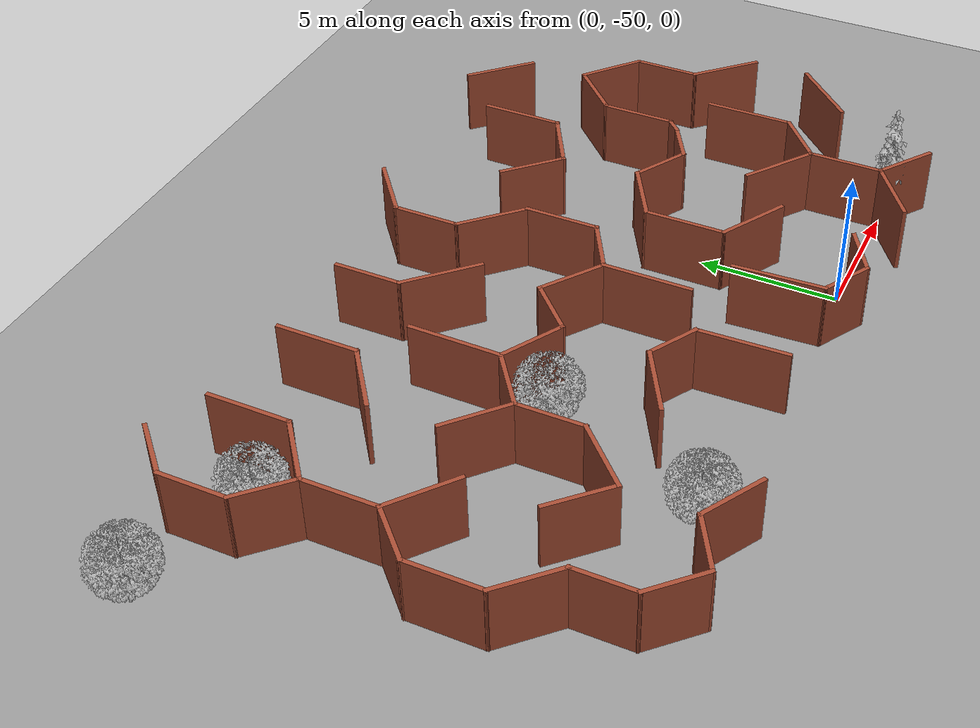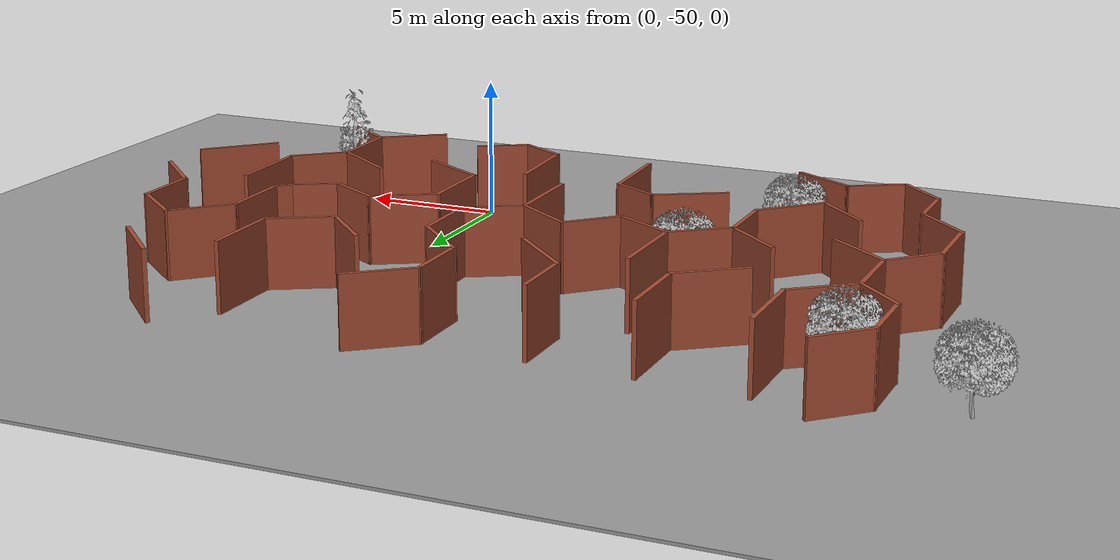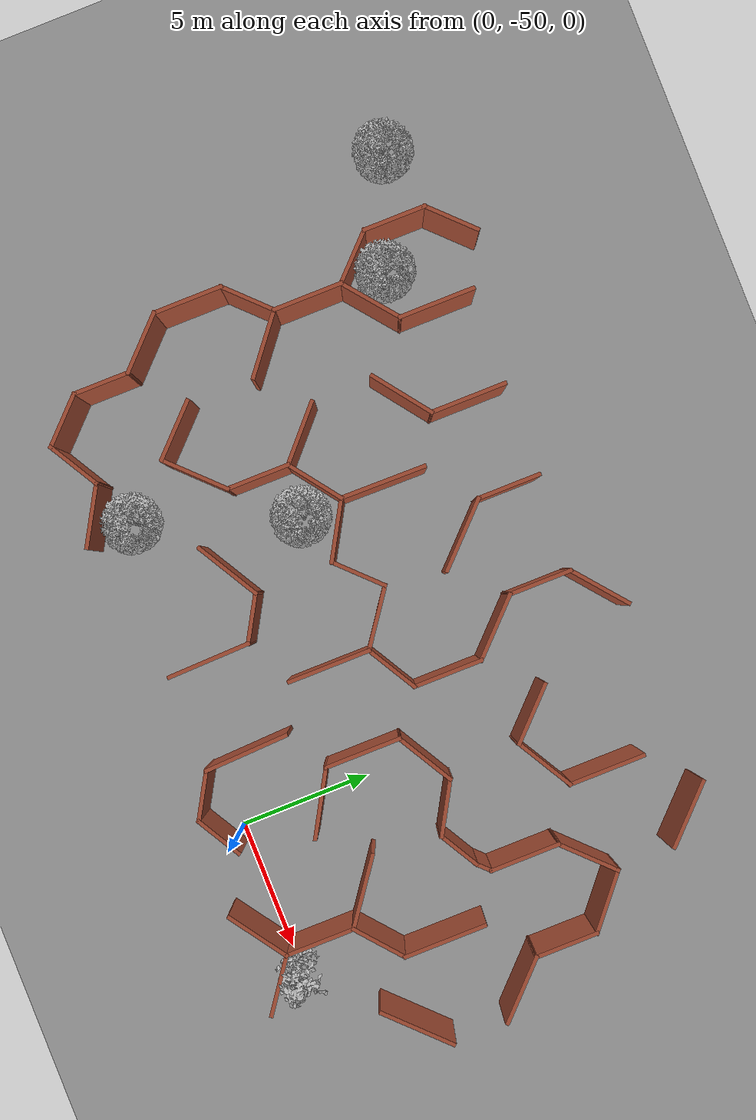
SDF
<sdf version="1.6">
 <world name="default">
  <model name="maze_rect_3">
   <pose>4e-06 -9.9e-05 0 0 -0 1.57001</pose>
   <link name="Wall_32">
    <collision name="Wall_32_Collision">
     <geometry><box><size>2.38551 0.15 2.5</size></box></geometry>
     <pose>0 0 1.25 0 -0 0</pose>
    </collision>
    <visual name="Wall_32_Visual">
     <pose>0 0 1.25 0 -0 0</pose>
     <geometry><box><size>2.38551 0.15 2.5</size></box></geometry>
     <material>
      <script><uri>file://media/materials/scripts/gazebo.material</uri><name>Gazebo/Bricks</name></script>
      <ambient>1 1 1 1</ambient>
     </material>
     <meta><layer>0</layer></meta>
    </visual>
    <pose>-50.5693 -5.5876 0 0 -0 0.950197</pose>
   </link>
   <link name="Wall_33">
    <collision name="Wall_33_Collision">
     <geometry><box><size>2.63445 0.15 2.5</size></box></geometry>
     <pose>0 0 1.25 0 -0 0</pose>
    </collision>
    <visual name="Wall_33_Visual">
     <pose>0 0 1.25 0 -0 0</pose>
     <geometry><box><size>2.63445 0.15 2.5</size></box></geometry>
     <material>
      <script><uri>file://media/materials/scripts/gazebo.material</uri><name>Gazebo/Bricks</name></script>
      <ambient>1 1 1 1</ambient>
     </material>
     <meta><layer>0</layer></meta>
    </visual>
    <pose>-50.6318 -3.6607 0 0 -0 2.18165</pose>
   </link>
   <link name="Wall_35">
    <collision name="Wall_35_Collision">
     <geometry><box><size>2 0.15 2.5</size></box></geometry>
     <pose>0 0 1.25 0 -0 0</pose>
    </collision>
    <visual name="Wall_35_Visual">
     <pose>0 0 1.25 0 -0 0</pose>
     <geometry><box><size>2 0.15 2.5</size></box></geometry>
     <material>
      <script><uri>file://media/materials/scripts/gazebo.material</uri><name>Gazebo/Bricks</name></script>
      <ambient>1 1 1 1</ambient>
     </material>
     <meta><layer>0</layer></meta>
    </visual>
    <pose>-50.6318 0.193118 0 0 -0 2.0944</pose>
   </link>
   <link name="Wall_36">
    <collision name="Wall_36_Collision">
     <geometry><box><size>2 0.15 2.5</size></box></geometry>
     <pose>0 0 1.25 0 -0 0</pose>
    </collision>
    <visual name="Wall_36_Visual">
     <pose>0 0 1.25 0 -0 0</pose>
     <geometry><box><size>2 0.15 2.5</size></box></geometry>
     <material>
      <script><uri>file://media/materials/scripts/gazebo.material</uri><name>Gazebo/Bricks</name></script>
      <ambient>1 1 1 1</ambient>
     </material>
     <meta><layer>0</layer></meta>
    </visual>
    <pose>-50.6318 1.79527 0 0 -0 1.0472</pose>
   </link>
   <link name="Wall_42">
    <collision name="Wall_42_Collision">
     <geometry><box><size>2.5 0.15 2.5</size></box></geometry>
     <pose>0 0 1.25 0 -0 0</pose>
    </collision>
    <visual name="Wall_42_Visual">
     <pose>0 0 1.25 0 -0 0</pose>
     <geometry><box><size>2.5 0.15 2.5</size></box></geometry>
     <material>
      <script><uri>file://media/materials/scripts/gazebo.material</uri><name>Gazebo/Bricks</name></script>
      <ambient>1 1 1 1</ambient>
     </material>
     <meta><layer>0</layer></meta>
    </visual>
    <pose>-50.6318 12.7072 0 0 -0 1.0472</pose>
   </link>
   <link name="Wall_43">
    <collision name="Wall_43_Collision">
     <geometry><box><size>2.25 0.15 2.5</size></box></geometry>
     <pose>0 0 1.25 0 -0 0</pose>
    </collision>
    <visual name="Wall_43_Visual">
     <pose>0 0 1.25 0 -0 0</pose>
     <geometry><box><size>2.25 0.15 2.5</size></box></geometry>
     <material>
      <script><uri>file://media/materials/scripts/gazebo.material</uri><name>Gazebo/Bricks</name></script>
      <ambient>1 1 1 1</ambient>
     </material>
     <meta><layer>0</layer></meta>
    </visual>
    <pose>-50.5693 14.6341 0 0 -0 2.0944</pose>
   </link>
   <link name="Wall_46">
    <collision name="Wall_46_Collision">
     <geometry><box><size>2.25 0.15 2.5</size></box></geometry>
     <pose>0 0 1.25 0 -0 0</pose>
    </collision>
    <visual name="Wall_46_Visual">
     <pose>0 0 1.25 0 -0 0</pose>
     <geometry><box><size>2.25 0.15 2.5</size></box></geometry>
     <material>
      <script><uri>file://media/materials/scripts/gazebo.material</uri><name>Gazebo/Bricks</name></script>
      <ambient>1 1 1 1</ambient>
     </material>
     <meta><layer>0</layer></meta>
    </visual>
    <pose>-50.3518 16.2859 0 0 -0 0.785398</pose>
   </link>
   <link name="Wall_47">
    <collision name="Wall_47_Collision">
     <geometry><box><size>2.25 0.15 2.5</size></box></geometry>
     <pose>0 0 1.25 0 -0 0</pose>
    </collision>
    <visual name="Wall_47_Visual">
     <pose>0 0 1.25 0 -0 0</pose>
     <geometry><box><size>2.25 0.15 2.5</size></box></geometry>
     <material>
      <script><uri>file://media/materials/scripts/gazebo.material</uri><name>Gazebo/Bricks</name></script>
      <ambient>1 1 1 1</ambient>
     </material>
     <meta><layer>0</layer></meta>
    </visual>
    <pose>-48.5594 17.0283 0 0 -0 0</pose>
   </link>
   <link name="Wall_48">
    <collision name="Wall_48_Collision">
     <geometry><box><size>2.5 0.15 2.5</size></box></geometry>
     <pose>0 0 1.25 0 -0 0</pose>
    </collision>
    <visual name="Wall_48_Visual">
     <pose>0 0 1.25 0 -0 0</pose>
     <geometry><box><size>2.5 0.15 2.5</size></box></geometry>
     <material>
      <script><uri>file://media/materials/scripts/gazebo.material</uri><name>Gazebo/Bricks</name></script>
      <ambient>1 1 1 1</ambient>
     </material>
     <meta><layer>0</layer></meta>
    </visual>
    <pose>-46.6785 17.8592 0 0 -0 0.785398</pose>
   </link>
   <link name="Wall_49">
    <collision name="Wall_49_Collision">
     <geometry><box><size>2.75 0.15 2.5</size></box></geometry>
     <pose>0 0 1.25 0 -0 0</pose>
    </collision>
    <visual name="Wall_49_Visual">
     <pose>0 0 1.25 0 -0 0</pose>
     <geometry><box><size>2.75 0.15 2.5</size></box></geometry>
     <material>
      <script><uri>file://media/materials/scripts/gazebo.material</uri><name>Gazebo/Bricks</name></script>
      <ambient>1 1 1 1</ambient>
     </material>
     <meta><layer>0</layer></meta>
    </visual>
    <pose>-44.5477 18.69 0 0 -0 0</pose>
   </link>
   <link name="Wall_50">
    <collision name="Wall_50_Collision">
     <geometry><box><size>2.25 0.15 2.5</size></box></geometry>
     <pose>0 0 1.25 0 -0 0</pose>
    </collision>
    <visual name="Wall_50_Visual">
     <pose>0 0 1.25 0 -0 0</pose>
     <geometry><box><size>2.25 0.15 2.5</size></box></geometry>
     <material>
      <script><uri>file://media/materials/scripts/gazebo.material</uri><name>Gazebo/Bricks</name></script>
      <ambient>1 1 1 1</ambient>
     </material>
     <meta><layer>0</layer></meta>
    </visual>
    <pose>-42.5052 17.9476 0 0 -0 -0.785398</pose>
   </link>
   <link name="Wall_51">
    <collision name="Wall_51_Collision">
     <geometry><box><size>2.75 0.15 2.5</size></box></geometry>
     <pose>0 0 1.25 0 -0 0</pose>
    </collision>
    <visual name="Wall_51_Visual">
     <pose>0 0 1.25 0 -0 0</pose>
     <geometry><box><size>2.75 0.15 2.5</size></box></geometry>
     <material>
      <script><uri>file://media/materials/scripts/gazebo.material</uri><name>Gazebo/Bricks</name></script>
      <ambient>1 1 1 1</ambient>
     </material>
     <meta><layer>0</layer></meta>
    </visual>
    <pose>-40.4627 17.2051 0 0 -0 0</pose>
   </link>
   <link name="Wall_52">
    <collision name="Wall_52_Collision">
     <geometry><box><size>2.25 0.15 2.5</size></box></geometry>
     <pose>0 0 1.25 0 -0 0</pose>
    </collision>
    <visual name="Wall_52_Visual">
     <pose>0 0 1.25 0 -0 0</pose>
     <geometry><box><size>2.25 0.15 2.5</size></box></geometry>
     <material>
      <script><uri>file://media/materials/scripts/gazebo.material</uri><name>Gazebo/Bricks</name></script>
      <ambient>1 1 1 1</ambient>
     </material>
     <meta><layer>0</layer></meta>
    </visual>
    <pose>-38.4203 17.9476 0 0 -0 0.785398</pose>
   </link>
   <link name="Wall_53">
    <collision name="Wall_53_Collision">
     <geometry><box><size>2.5 0.15 2.5</size></box></geometry>
     <pose>0 0 1.25 0 -0 0</pose>
    </collision>
    <visual name="Wall_53_Visual">
     <pose>0 0 1.25 0 -0 0</pose>
     <geometry><box><size>2.5 0.15 2.5</size></box></geometry>
     <material>
      <script><uri>file://media/materials/scripts/gazebo.material</uri><name>Gazebo/Bricks</name></script>
      <ambient>1 1 1 1</ambient>
     </material>
     <meta><layer>0</layer></meta>
    </visual>
    <pose>-36.5028 18.69 0 0 -0 0</pose>
   </link>
   <link name="Wall_537">
    <collision name="Wall_537_Collision">
     <geometry><box><size>2.5 0.15 2.5</size></box></geometry>
     <pose>0 0 1.25 0 -0 0</pose>
    </collision>
    <visual name="Wall_537_Visual">
     <pose>0 0 1.25 0 -0 0</pose>
     <geometry><box><size>2.5 0.15 2.5</size></box></geometry>
     <material>
      <script><uri>file://media/materials/scripts/gazebo.material</uri><name>Gazebo/Bricks</name></script>
      <ambient>1 1 1 1</ambient>
     </material>
     <meta><layer>0</layer></meta>
    </visual>
    <pose>-38.4579 0.179297 0 0 -0 -2.35619</pose>
   </link>
   <link name="Wall_538">
    <collision name="Wall_538_Collision">
     <geometry><box><size>2.5 0.15 2.5</size></box></geometry>
     <pose>0 0 1.25 0 -0 0</pose>
    </collision>
    <visual name="Wall_538_Visual">
     <pose>0 0 1.25 0 -0 0</pose>
     <geometry><box><size>2.5 0.15 2.5</size></box></geometry>
     <material>
      <script><uri>file://media/materials/scripts/gazebo.material</uri><name>Gazebo/Bricks</name></script>
      <ambient>1 1 1 1</ambient>
     </material>
     <meta><layer>0</layer></meta>
    </visual>
    <pose>-38.7013 -1.66913 0 0 -0 -1.0472</pose>
   </link>
   <link name="Wall_539">
    <collision name="Wall_539_Collision">
     <geometry><box><size>3 0.15 2.5</size></box></geometry>
     <pose>0 0 1.25 0 -0 0</pose>
    </collision>
    <visual name="Wall_539_Visual">
     <pose>0 0 1.25 0 -0 0</pose>
     <geometry><box><size>3 0.15 2.5</size></box></geometry>
     <material>
      <script><uri>file://media/materials/scripts/gazebo.material</uri><name>Gazebo/Bricks</name></script>
      <ambient>1 1 1 1</ambient>
     </material>
     <meta><layer>0</layer></meta>
    </visual>
    <pose>-36.6888 -2.68671 0 0 -0 0</pose>
   </link>
   <link name="Wall_54">
    <collision name="Wall_54_Collision">
     <geometry><box><size>2.25 0.15 2.5</size></box></geometry>
     <pose>0 0 1.25 0 -0 0</pose>
    </collision>
    <visual name="Wall_54_Visual">
     <pose>0 0 1.25 0 -0 0</pose>
     <geometry><box><size>2.25 0.15 2.5</size></box></geometry>
     <material>
      <script><uri>file://media/materials/scripts/gazebo.material</uri><name>Gazebo/Bricks</name></script>
      <ambient>1 1 1 1</ambient>
     </material>
     <meta><layer>0</layer></meta>
    </visual>
    <pose>-34.5853 17.9476 0 0 -0 -0.785398</pose>
   </link>
   <link name="Wall_541">
    <collision name="Wall_541_Collision">
     <geometry><box><size>2.75 0.15 2.5</size></box></geometry>
     <pose>0 0 1.25 0 -0 0</pose>
    </collision>
    <visual name="Wall_541_Visual">
     <pose>0 0 1.25 0 -0 0</pose>
     <geometry><box><size>2.75 0.15 2.5</size></box></geometry>
     <material>
      <script><uri>file://media/materials/scripts/gazebo.material</uri><name>Gazebo/Bricks</name></script>
      <ambient>1 1 1 1</ambient>
     </material>
     <meta><layer>0</layer></meta>
    </visual>
    <pose>-34.5213 -5.26765 0 0 -0 -2.35619</pose>
   </link>
   <link name="Wall_559">
    <collision name="Wall_559_Collision">
     <geometry><box><size>3 0.15 2.5</size></box></geometry>
     <pose>0 0 1.25 0 -0 0</pose>
    </collision>
    <visual name="Wall_559_Visual">
     <pose>0 0 1.25 0 -0 0</pose>
     <geometry><box><size>3 0.15 2.5</size></box></geometry>
     <material>
      <script><uri>file://media/materials/scripts/gazebo.material</uri><name>Gazebo/Bricks</name></script>
      <ambient>1 1 1 1</ambient>
     </material>
     <meta><layer>0</layer></meta>
    </visual>
    <pose>-46.485 -8.87773 0 0 -0 -0.785398</pose>
   </link>
   <link name="Wall_561">
    <collision name="Wall_561_Collision">
     <geometry><box><size>2.75 0.15 2.5</size></box></geometry>
     <pose>0 0 1.25 0 -0 0</pose>
    </collision>
    <visual name="Wall_561_Visual">
     <pose>0 0 1.25 0 -0 0</pose>
     <geometry><box><size>2.75 0.15 2.5</size></box></geometry>
     <material>
      <script><uri>file://media/materials/scripts/gazebo.material</uri><name>Gazebo/Bricks</name></script>
      <ambient>1 1 1 1</ambient>
     </material>
     <meta><layer>0</layer></meta>
    </visual>
    <pose>-42.4581 -8.96612 0 0 -0 0.785398</pose>
   </link>
   <link name="Wall_562">
    <collision name="Wall_562_Collision">
     <geometry><box><size>2.5 0.15 2.5</size></box></geometry>
     <pose>0 0 1.25 0 -0 0</pose>
    </collision>
    <visual name="Wall_562_Visual">
     <pose>0 0 1.25 0 -0 0</pose>
     <geometry><box><size>2.5 0.15 2.5</size></box></geometry>
     <material>
      <script><uri>file://media/materials/scripts/gazebo.material</uri><name>Gazebo/Bricks</name></script>
      <ambient>1 1 1 1</ambient>
     </material>
     <meta><layer>0</layer></meta>
    </visual>
    <pose>-40.3639 -8.04688 0 0 -0 0</pose>
   </link>
   <link name="Wall_568">
    <collision name="Wall_568_Collision">
     <geometry><box><size>2.75 0.15 2.5</size></box></geometry>
     <pose>0 0 1.25 0 -0 0</pose>
    </collision>
    <visual name="Wall_568_Visual">
     <pose>0 0 1.25 0 -0 0</pose>
     <geometry><box><size>2.75 0.15 2.5</size></box></geometry>
     <material>
      <script><uri>file://media/materials/scripts/gazebo.material</uri><name>Gazebo/Bricks</name></script>
      <ambient>1 1 1 1</ambient>
     </material>
     <meta><layer>0</layer></meta>
    </visual>
    <pose>-46.752 -0.005721 0 0 -0 1.0472</pose>
   </link>
   <link name="Wall_569">
    <collision name="Wall_569_Collision">
     <geometry><box><size>3 0.15 2.5</size></box></geometry>
     <pose>0 0 1.25 0 -0 0</pose>
    </collision>
    <visual name="Wall_569_Visual">
     <pose>0 0 1.25 0 -0 0</pose>
     <geometry><box><size>3 0.15 2.5</size></box></geometry>
     <material>
      <script><uri>file://media/materials/scripts/gazebo.material</uri><name>Gazebo/Bricks</name></script>
      <ambient>1 1 1 1</ambient>
     </material>
     <meta><layer>0</layer></meta>
    </visual>
    <pose>-44.677 1.12011 0 0 -0 0</pose>
   </link>
   <link name="Wall_570">
    <collision name="Wall_570_Collision">
     <geometry><box><size>2.5 0.15 2.5</size></box></geometry>
     <pose>0 0 1.25 0 -0 0</pose>
    </collision>
    <visual name="Wall_570_Visual">
     <pose>0 0 1.25 0 -0 0</pose>
     <geometry><box><size>2.5 0.15 2.5</size></box></geometry>
     <material>
      <script><uri>file://media/materials/scripts/gazebo.material</uri><name>Gazebo/Bricks</name></script>
      <ambient>1 1 1 1</ambient>
     </material>
     <meta><layer>0</layer></meta>
    </visual>
    <pose>-42.6645 0.102532 0 0 -0 -1.0472</pose>
   </link>
   <link name="Wall_571">
    <collision name="Wall_571_Collision">
     <geometry><box><size>2.25 0.15 2.5</size></box></geometry>
     <pose>0 0 1.25 0 -0 0</pose>
    </collision>
    <visual name="Wall_571_Visual">
     <pose>0 0 1.25 0 -0 0</pose>
     <geometry><box><size>2.25 0.15 2.5</size></box></geometry>
     <material>
      <script><uri>file://media/materials/scripts/gazebo.material</uri><name>Gazebo/Bricks</name></script>
      <ambient>1 1 1 1</ambient>
     </material>
     <meta><layer>0</layer></meta>
    </visual>
    <pose>-42.602 -1.82437 0 0 -0 -2.0944</pose>
   </link>
   <link name="Wall_572">
    <collision name="Wall_572_Collision">
     <geometry><box><size>1.75 0.15 2.5</size></box></geometry>
     <pose>0 0 1.25 0 -0 0</pose>
    </collision>
    <visual name="Wall_572_Visual">
     <pose>0 0 1.25 0 -0 0</pose>
     <geometry><box><size>1.75 0.15 2.5</size></box></geometry>
     <material>
      <script><uri>file://media/materials/scripts/gazebo.material</uri><name>Gazebo/Bricks</name></script>
      <ambient>1 1 1 1</ambient>
     </material>
     <meta><layer>0</layer></meta>
    </visual>
    <pose>-42.727 -3.42652 0 0 -0 -1.0472</pose>
   </link>
   <link name="Wall_573">
    <collision name="Wall_573_Collision">
     <geometry><box><size>0.75 0.15 2.5</size></box></geometry>
     <pose>0 0 1.25 0 -0 0</pose>
    </collision>
    <visual name="Wall_573_Visual">
     <pose>0 0 1.25 0 -0 0</pose>
     <geometry><box><size>0.75 0.15 2.5</size></box></geometry>
     <material>
      <script><uri>file://media/materials/scripts/gazebo.material</uri><name>Gazebo/Bricks</name></script>
      <ambient>1 1 1 1</ambient>
     </material>
     <meta><layer>0</layer></meta>
    </visual>
    <pose>-42.1148 -4.33147 0 0 -0 -0.785398</pose>
   </link>
   <link name="Wall_574">
    <collision name="Wall_574_Collision">
     <geometry><box><size>2.75 0.15 2.5</size></box></geometry>
     <pose>0 0 1.25 0 -0 0</pose>
    </collision>
    <visual name="Wall_574_Visual">
     <pose>0 0 1.25 0 -0 0</pose>
     <geometry><box><size>2.75 0.15 2.5</size></box></geometry>
     <material>
      <script><uri>file://media/materials/scripts/gazebo.material</uri><name>Gazebo/Bricks</name></script>
      <ambient>1 1 1 1</ambient>
     </material>
     <meta><layer>0</layer></meta>
    </visual>
    <pose>-40.6027 -4.54361 0 0 -0 0</pose>
   </link>
   <link name="Wall_575">
    <collision name="Wall_575_Collision">
     <geometry><box><size>2.5 0.15 2.5</size></box></geometry>
     <pose>0 0 1.25 0 -0 0</pose>
    </collision>
    <visual name="Wall_575_Visual">
     <pose>0 0 1.25 0 -0 0</pose>
     <geometry><box><size>2.5 0.15 2.5</size></box></geometry>
     <material>
      <script><uri>file://media/materials/scripts/gazebo.material</uri><name>Gazebo/Bricks</name></script>
      <ambient>1 1 1 1</ambient>
     </material>
     <meta><layer>0</layer></meta>
    </visual>
    <pose>-38.4718 -5.37446 0 0 -0 -0.785398</pose>
   </link>
   <link name="Wall_576">
    <collision name="Wall_576_Collision">
     <geometry><box><size>2.55568 0.15 2.5</size></box></geometry>
     <pose>0 0 1.25 0 -0 0</pose>
    </collision>
    <visual name="Wall_576_Visual">
     <pose>0 0 1.25 0 -0 0</pose>
     <geometry><box><size>2.55568 0.15 2.5</size></box></geometry>
     <material>
      <script><uri>file://media/materials/scripts/gazebo.material</uri><name>Gazebo/Bricks</name></script>
      <ambient>1 1 1 1</ambient>
     </material>
     <meta><layer>0</layer></meta>
    </visual>
    <pose>-38.4149 -7.12609 0 0 -0 -2.26975</pose>
   </link>
   <link name="Wall_578">
    <collision name="Wall_578_Collision">
     <geometry><box><size>3.25 0.15 2.5</size></box></geometry>
     <pose>0 0 1.25 0 -0 0</pose>
    </collision>
    <visual name="Wall_578_Visual">
     <pose>0 0 1.25 0 -0 0</pose>
     <geometry><box><size>3.25 0.15 2.5</size></box></geometry>
     <material>
      <script><uri>file://media/materials/scripts/gazebo.material</uri><name>Gazebo/Bricks</name></script>
      <ambient>1 1 1 1</ambient>
     </material>
     <meta><layer>0</layer></meta>
    </visual>
    <pose>-44.4008 -6.3002 0 0 -0 3.14159</pose>
   </link>
   <link name="Wall_579">
    <collision name="Wall_579_Collision">
     <geometry><box><size>2.27211 0.15 2.5</size></box></geometry>
     <pose>0 0 1.25 0 -0 0</pose>
    </collision>
    <visual name="Wall_579_Visual">
     <pose>0 0 1.25 0 -0 0</pose>
     <geometry><box><size>2.27211 0.15 2.5</size></box></geometry>
     <material>
      <script><uri>file://media/materials/scripts/gazebo.material</uri><name>Gazebo/Bricks</name></script>
      <ambient>1 1 1 1</ambient>
     </material>
     <meta><layer>0</layer></meta>
    </visual>
    <pose>-46.635 -5.48924 0 0 -0 2.27164</pose>
   </link>
   <link name="Wall_580">
    <collision name="Wall_580_Collision">
     <geometry><box><size>2.75 0.15 2.5</size></box></geometry>
     <pose>0 0 1.25 0 -0 0</pose>
    </collision>
    <visual name="Wall_580_Visual">
     <pose>0 0 1.25 0 -0 0</pose>
     <geometry><box><size>2.75 0.15 2.5</size></box></geometry>
     <material>
      <script><uri>file://media/materials/scripts/gazebo.material</uri><name>Gazebo/Bricks</name></script>
      <ambient>1 1 1 1</ambient>
     </material>
     <meta><layer>0</layer></meta>
    </visual>
    <pose>-48.6193 -4.67828 0 0 -0 3.14159</pose>
   </link>
   <link name="Wall_582">
    <collision name="Wall_582_Collision">
     <geometry><box><size>2.91824 0.15 2.5</size></box></geometry>
     <pose>0 0 1.25 0 -0 0</pose>
    </collision>
    <visual name="Wall_582_Visual">
     <pose>0 0 1.25 0 -0 0</pose>
     <geometry><box><size>2.91824 0.15 2.5</size></box></geometry>
     <material>
      <script><uri>file://media/materials/scripts/gazebo.material</uri><name>Gazebo/Bricks</name></script>
      <ambient>1 1 1 1</ambient>
     </material>
     <meta><layer>0</layer></meta>
    </visual>
    <pose>-46.5071 -3.55749 0 0 -0 -2.19787</pose>
   </link>
   <link name="Wall_595">
    <collision name="Wall_595_Collision">
     <geometry><box><size>3.29802 0.15 2.5</size></box></geometry>
     <pose>0 0 1.25 0 -0 0</pose>
    </collision>
    <visual name="Wall_595_Visual">
     <pose>0 0 1.25 0 -0 0</pose>
     <geometry><box><size>3.29802 0.15 2.5</size></box></geometry>
     <material>
      <script><uri>file://media/materials/scripts/gazebo.material</uri><name>Gazebo/Bricks</name></script>
      <ambient>1 1 1 1</ambient>
     </material>
     <meta><layer>0</layer></meta>
    </visual>
    <pose>-48.5968 2.66538 0 0 -0 -3.09771</pose>
   </link>
   <link name="Wall_597">
    <collision name="Wall_597_Collision">
     <geometry><box><size>2.75 0.15 2.5</size></box></geometry>
     <pose>0 0 1.25 0 -0 0</pose>
    </collision>
    <visual name="Wall_597_Visual">
     <pose>0 0 1.25 0 -0 0</pose>
     <geometry><box><size>2.75 0.15 2.5</size></box></geometry>
     <material>
      <script><uri>file://media/materials/scripts/gazebo.material</uri><name>Gazebo/Bricks</name></script>
      <ambient>1 1 1 1</ambient>
     </material>
     <meta><layer>0</layer></meta>
    </visual>
    <pose>-46.7977 9.04905 0 0 -0 -1.0472</pose>
   </link>
   <link name="Wall_598">
    <collision name="Wall_598_Collision">
     <geometry><box><size>2 0.15 2.5</size></box></geometry>
     <pose>0 0 1.25 0 -0 0</pose>
    </collision>
    <visual name="Wall_598_Visual">
     <pose>0 0 1.25 0 -0 0</pose>
     <geometry><box><size>2 0.15 2.5</size></box></geometry>
     <material>
      <script><uri>file://media/materials/scripts/gazebo.material</uri><name>Gazebo/Bricks</name></script>
      <ambient>1 1 1 1</ambient>
     </material>
     <meta><layer>0</layer></meta>
    </visual>
    <pose>-46.6102 7.12214 0 0 -0 -2.0944</pose>
   </link>
   <link name="Wall_599">
    <collision name="Wall_599_Collision">
     <geometry><box><size>3.24778 0.15 2.5</size></box></geometry>
     <pose>0 0 1.25 0 -0 0</pose>
    </collision>
    <visual name="Wall_599_Visual">
     <pose>0 0 1.25 0 -0 0</pose>
     <geometry><box><size>3.24778 0.15 2.5</size></box></geometry>
     <material>
      <script><uri>file://media/materials/scripts/gazebo.material</uri><name>Gazebo/Bricks</name></script>
      <ambient>1 1 1 1</ambient>
     </material>
     <meta><layer>0</layer></meta>
    </visual>
    <pose>-48.621 6.27736 0 0 -0 -3.11337</pose>
   </link>
   <link name="Wall_601">
    <collision name="Wall_601_Collision">
     <geometry><box><size>2.71977 0.15 2.5</size></box></geometry>
     <pose>0 0 1.25 0 -0 0</pose>
    </collision>
    <visual name="Wall_601_Visual">
     <pose>0 0 1.25 0 -0 0</pose>
     <geometry><box><size>2.71977 0.15 2.5</size></box></geometry>
     <material>
      <script><uri>file://media/materials/scripts/gazebo.material</uri><name>Gazebo/Bricks</name></script>
      <ambient>1 1 1 1</ambient>
     </material>
     <meta><layer>0</layer></meta>
    </visual>
    <pose>-42.5636 16.2004 0 0 -0 0.897796</pose>
   </link>
   <link name="Wall_603">
    <collision name="Wall_603_Collision">
     <geometry><box><size>3 0.15 2.5</size></box></geometry>
     <pose>0 0 1.25 0 -0 0</pose>
    </collision>
    <visual name="Wall_603_Visual">
     <pose>0 0 1.25 0 -0 0</pose>
     <geometry><box><size>3 0.15 2.5</size></box></geometry>
     <material>
      <script><uri>file://media/materials/scripts/gazebo.material</uri><name>Gazebo/Bricks</name></script>
      <ambient>1 1 1 1</ambient>
     </material>
     <meta><layer>0</layer></meta>
    </visual>
    <pose>-36.1998 15.2864 0 0 -0 3.14159</pose>
   </link>
   <link name="Wall_604">
    <collision name="Wall_604_Collision">
     <geometry><box><size>2.60902 0.15 2.5</size></box></geometry>
     <pose>0 0 1.25 0 -0 0</pose>
    </collision>
    <visual name="Wall_604_Visual">
     <pose>0 0 1.25 0 -0 0</pose>
     <geometry><box><size>2.60902 0.15 2.5</size></box></geometry>
     <material>
      <script><uri>file://media/materials/scripts/gazebo.material</uri><name>Gazebo/Bricks</name></script>
      <ambient>1 1 1 1</ambient>
     </material>
     <meta><layer>0</layer></meta>
    </visual>
    <pose>-38.3937 16.2458 0 0 -0 2.24649</pose>
   </link>
   <link name="Wall_606">
    <collision name="Wall_606_Collision">
     <geometry><box><size>2.67136 0.15 2.5</size></box></geometry>
     <pose>0 0 1.25 0 -0 0</pose>
    </collision>
    <visual name="Wall_606_Visual">
     <pose>0 0 1.25 0 -0 0</pose>
     <geometry><box><size>2.67136 0.15 2.5</size></box></geometry>
     <material>
      <script><uri>file://media/materials/scripts/gazebo.material</uri><name>Gazebo/Bricks</name></script>
      <ambient>1 1 1 1</ambient>
     </material>
     <meta><layer>0</layer></meta>
    </visual>
    <pose>-38.5842 12.6758 0 0 -0 -0.926085</pose>
   </link>
   <link name="Wall_607">
    <collision name="Wall_607_Collision">
     <geometry><box><size>3 0.15 2.5</size></box></geometry>
     <pose>0 0 1.25 0 -0 0</pose>
    </collision>
    <visual name="Wall_607_Visual">
     <pose>0 0 1.25 0 -0 0</pose>
     <geometry><box><size>3 0.15 2.5</size></box></geometry>
     <material>
      <script><uri>file://media/materials/scripts/gazebo.material</uri><name>Gazebo/Bricks</name></script>
      <ambient>1 1 1 1</ambient>
     </material>
     <meta><layer>0</layer></meta>
    </visual>
    <pose>-36.4016 11.6681 0 0 -0 0</pose>
   </link>
   <link name="Wall_615">
    <collision name="Wall_615_Collision">
     <geometry><box><size>3 0.15 2.5</size></box></geometry>
     <pose>0 0 1.25 0 -0 0</pose>
    </collision>
    <visual name="Wall_615_Visual">
     <pose>0 0 1.25 0 -0 0</pose>
     <geometry><box><size>3 0.15 2.5</size></box></geometry>
     <material>
      <script><uri>file://media/materials/scripts/gazebo.material</uri><name>Gazebo/Bricks</name></script>
      <ambient>1 1 1 1</ambient>
     </material>
     <meta><layer>0</layer></meta>
    </visual>
    <pose>-38.3984 7.14209 0 0 -0 0.785398</pose>
   </link>
   <link name="Wall_616">
    <collision name="Wall_616_Collision">
     <geometry><box><size>2.5 0.15 2.5</size></box></geometry>
     <pose>0 0 1.25 0 -0 0</pose>
    </collision>
    <visual name="Wall_616_Visual">
     <pose>0 0 1.25 0 -0 0</pose>
     <geometry><box><size>2.5 0.15 2.5</size></box></geometry>
     <material>
      <script><uri>file://media/materials/scripts/gazebo.material</uri><name>Gazebo/Bricks</name></script>
      <ambient>1 1 1 1</ambient>
     </material>
     <meta><layer>0</layer></meta>
    </visual>
    <pose>-36.2158 8.14972 0 0 -0 0</pose>
   </link>
   <link name="Wall_639">
    <collision name="Wall_639_Collision">
     <geometry><box><size>3.25 0.15 2.5</size></box></geometry>
     <pose>0 0 1.25 0 -0 0</pose>
    </collision>
    <visual name="Wall_639_Visual">
     <pose>0 0 1.25 0 -0 0</pose>
     <geometry><box><size>3.25 0.15 2.5</size></box></geometry>
     <material>
      <script><uri>file://media/materials/scripts/gazebo.material</uri><name>Gazebo/Bricks</name></script>
      <ambient>1 1 1 1</ambient>
     </material>
     <meta><layer>0</layer></meta>
    </visual>
    <pose>-44.6499 4.48459 0 0 -0 0</pose>
   </link>
   <link name="Wall_640">
    <collision name="Wall_640_Collision">
     <geometry><box><size>2.25 0.15 2.5</size></box></geometry>
     <pose>0 0 1.25 0 -0 0</pose>
    </collision>
    <visual name="Wall_640_Visual">
     <pose>0 0 1.25 0 -0 0</pose>
     <geometry><box><size>2.25 0.15 2.5</size></box></geometry>
     <material>
      <script><uri>file://media/materials/scripts/gazebo.material</uri><name>Gazebo/Bricks</name></script>
      <ambient>1 1 1 1</ambient>
     </material>
     <meta><layer>0</layer></meta>
    </visual>
    <pose>-42.5749 3.57526 0 0 -0 -1.0472</pose>
   </link>
   <link name="Wall_641">
    <collision name="Wall_641_Collision">
     <geometry><box><size>2.75 0.15 2.5</size></box></geometry>
     <pose>0 0 1.25 0 -0 0</pose>
    </collision>
    <visual name="Wall_641_Visual">
     <pose>0 0 1.25 0 -0 0</pose>
     <geometry><box><size>2.75 0.15 2.5</size></box></geometry>
     <material>
      <script><uri>file://media/materials/scripts/gazebo.material</uri><name>Gazebo/Bricks</name></script>
      <ambient>1 1 1 1</ambient>
     </material>
     <meta><layer>0</layer></meta>
    </visual>
    <pose>-40.7499 2.66594 0 0 -0 0</pose>
   </link>
   <link name="Wall_642">
    <collision name="Wall_642_Collision">
     <geometry><box><size>2.75 0.15 2.5</size></box></geometry>
     <pose>0 0 1.25 0 -0 0</pose>
    </collision>
    <visual name="Wall_642_Visual">
     <pose>0 0 1.25 0 -0 0</pose>
     <geometry><box><size>2.75 0.15 2.5</size></box></geometry>
     <material>
      <script><uri>file://media/materials/scripts/gazebo.material</uri><name>Gazebo/Bricks</name></script>
      <ambient>1 1 1 1</ambient>
     </material>
     <meta><layer>0</layer></meta>
    </visual>
    <pose>-38.5307 3.58517 0 0 -0 0.785398</pose>
   </link>
   <link name="Wall_643">
    <collision name="Wall_643_Collision">
     <geometry><box><size>2.5 0.15 2.5</size></box></geometry>
     <pose>0 0 1.25 0 -0 0</pose>
    </collision>
    <visual name="Wall_643_Visual">
     <pose>0 0 1.25 0 -0 0</pose>
     <geometry><box><size>2.5 0.15 2.5</size></box></geometry>
     <material>
      <script><uri>file://media/materials/scripts/gazebo.material</uri><name>Gazebo/Bricks</name></script>
      <ambient>1 1 1 1</ambient>
     </material>
     <meta><layer>0</layer></meta>
    </visual>
    <pose>-36.4364 4.50441 0 0 -0 0</pose>
   </link>
   <link name="Wall_644">
    <collision name="Wall_644_Collision">
     <geometry><box><size>2.57675 0.15 2.5</size></box></geometry>
     <pose>0 0 1.25 0 -0 0</pose>
    </collision>
    <visual name="Wall_644_Visual">
     <pose>0 0 1.25 0 -0 0</pose>
     <geometry><box><size>2.57675 0.15 2.5</size></box></geometry>
     <material>
      <script><uri>file://media/materials/scripts/gazebo.material</uri><name>Gazebo/Bricks</name></script>
      <ambient>1 1 1 1</ambient>
     </material>
     <meta><layer>0</layer></meta>
    </visual>
    <pose>-34.4931 3.56531 0 0 -0 -0.885071</pose>
   </link>
   <link name="Wall_653">
    <collision name="Wall_653_Collision">
     <geometry><box><size>2.5 0.15 2.5</size></box></geometry>
     <pose>0 0 1.25 0 -0 0</pose>
    </collision>
    <visual name="Wall_653_Visual">
     <pose>0 0 1.25 0 -0 0</pose>
     <geometry><box><size>2.5 0.15 2.5</size></box></geometry>
     <material>
      <script><uri>file://media/materials/scripts/gazebo.material</uri><name>Gazebo/Bricks</name></script>
      <ambient>1 1 1 1</ambient>
     </material>
     <meta><layer>0</layer></meta>
    </visual>
    <pose>-46.7121 14.4734 0 0 -0 -2.35619</pose>
   </link>
   <link name="Wall_654">
    <collision name="Wall_654_Collision">
     <geometry><box><size>2.75 0.15 2.5</size></box></geometry>
     <pose>0 0 1.25 0 -0 0</pose>
    </collision>
    <visual name="Wall_654_Visual">
     <pose>0 0 1.25 0 -0 0</pose>
     <geometry><box><size>2.75 0.15 2.5</size></box></geometry>
     <material>
      <script><uri>file://media/materials/scripts/gazebo.material</uri><name>Gazebo/Bricks</name></script>
      <ambient>1 1 1 1</ambient>
     </material>
     <meta><layer>0</layer></meta>
    </visual>
    <pose>-46.6237 12.7233 0 0 -0 -0.785398</pose>
   </link>
   <link name="Wall_655">
    <collision name="Wall_655_Collision">
     <geometry><box><size>2.5 0.15 2.5</size></box></geometry>
     <pose>0 0 1.25 0 -0 0</pose>
    </collision>
    <visual name="Wall_655_Visual">
     <pose>0 0 1.25 0 -0 0</pose>
     <geometry><box><size>2.5 0.15 2.5</size></box></geometry>
     <material>
      <script><uri>file://media/materials/scripts/gazebo.material</uri><name>Gazebo/Bricks</name></script>
      <ambient>1 1 1 1</ambient>
     </material>
     <meta><layer>0</layer></meta>
    </visual>
    <pose>-44.5295 11.804 0 0 -0 0</pose>
   </link>
   <link name="Wall_656">
    <collision name="Wall_656_Collision">
     <geometry><box><size>2.41594 0.15 2.5</size></box></geometry>
     <pose>0 0 1.25 0 -0 0</pose>
    </collision>
    <visual name="Wall_656_Visual">
     <pose>0 0 1.25 0 -0 0</pose>
     <geometry><box><size>2.41594 0.15 2.5</size></box></geometry>
     <material>
      <script><uri>file://media/materials/scripts/gazebo.material</uri><name>Gazebo/Bricks</name></script>
      <ambient>1 1 1 1</ambient>
     </material>
     <meta><layer>0</layer></meta>
    </visual>
    <pose>-42.6786 10.8948 0 0 -0 -0.931586</pose>
   </link>
   <link name="Wall_657">
    <collision name="Wall_657_Collision">
     <geometry><box><size>2.5 0.15 2.5</size></box></geometry>
     <pose>0 0 1.25 0 -0 0</pose>
    </collision>
    <visual name="Wall_657_Visual">
     <pose>0 0 1.25 0 -0 0</pose>
     <geometry><box><size>2.5 0.15 2.5</size></box></geometry>
     <material>
      <script><uri>file://media/materials/scripts/gazebo.material</uri><name>Gazebo/Bricks</name></script>
      <ambient>1 1 1 1</ambient>
     </material>
     <meta><layer>0</layer></meta>
    </visual>
    <pose>-42.5902 8.96789 0 0 -0 -2.0944</pose>
   </link>
   <link name="Wall_658">
    <collision name="Wall_658_Collision">
     <geometry><box><size>2.25 0.15 2.5</size></box></geometry>
     <pose>0 0 1.25 0 -0 0</pose>
    </collision>
    <visual name="Wall_658_Visual">
     <pose>0 0 1.25 0 -0 0</pose>
     <geometry><box><size>2.25 0.15 2.5</size></box></geometry>
     <material>
      <script><uri>file://media/materials/scripts/gazebo.material</uri><name>Gazebo/Bricks</name></script>
      <ambient>1 1 1 1</ambient>
     </material>
     <meta><layer>0</layer></meta>
    </visual>
    <pose>-42.4353 7.20785 0 0 -0 -0.785398</pose>
   </link>
   <link name="Wall_659">
    <collision name="Wall_659_Collision">
     <geometry><box><size>2.57972 0.15 2.5</size></box></geometry>
     <pose>0 0 1.25 0 -0 0</pose>
    </collision>
    <visual name="Wall_659_Visual">
     <pose>0 0 1.25 0 -0 0</pose>
     <geometry><box><size>2.57972 0.15 2.5</size></box></geometry>
     <material>
      <script><uri>file://media/materials/scripts/gazebo.material</uri><name>Gazebo/Bricks</name></script>
      <ambient>1 1 1 1</ambient>
     </material>
     <meta><layer>0</layer></meta>
    </visual>
    <pose>-42.3964 5.47499 0 0 -0 -2.18845</pose>
   </link>
   <link name="Wall_661">
    <collision name="Wall_661_Collision">
     <geometry><box><size>3.36585 0.15 2.5</size></box></geometry>
     <pose>0 0 1.25 0 -0 0</pose>
    </collision>
    <visual name="Wall_661_Visual">
     <pose>0 0 1.25 0 -0 0</pose>
     <geometry><box><size>3.36585 0.15 2.5</size></box></geometry>
     <material>
      <script><uri>file://media/materials/scripts/gazebo.material</uri><name>Gazebo/Bricks</name></script>
      <ambient>1 1 1 1</ambient>
     </material>
     <meta><layer>0</layer></meta>
    </visual>
    <pose>-40.3949 9.96727 0 0 -0 3.13027</pose>
   </link>
   <link name="Wall_663">
    <collision name="Wall_663_Collision">
     <geometry><box><size>2.59346 0.15 2.5</size></box></geometry>
     <pose>0 0 1.25 0 -0 0</pose>
    </collision>
    <visual name="Wall_663_Visual">
     <pose>0 0 1.25 0 -0 0</pose>
     <geometry><box><size>2.59346 0.15 2.5</size></box></geometry>
     <material>
      <script><uri>file://media/materials/scripts/gazebo.material</uri><name>Gazebo/Bricks</name></script>
      <ambient>1 1 1 1</ambient>
     </material>
     <meta><layer>0</layer></meta>
    </visual>
    <pose>-42.5351 12.7103 0 0 -0 -2.30593</pose>
   </link>
   <static>1</static>
  </model>
  <model name="tree2_12">
   <link name="link_0">
    <inertial>
     <mass>1</mass>
     <inertia>
      <ixx>0.166667</ixx>
      <ixy>0</ixy>
      <ixz>0</ixz>
      <iyy>0.166667</iyy>
      <iyz>0</iyz>
      <izz>0.166667</izz>
     </inertia>
    </inertial>
    <pose>-0 -0 0 1.58863 -0.000294 0</pose>
    <visual name="visual">
     <geometry><mesh><uri>model://tree2/Tree.obj</uri><scale>1 1 1</scale></mesh></geometry>
    </visual>
    <collision name="collision">
     <geometry><mesh><uri>model://tree2/Tree.obj</uri><scale>1 1 1</scale></mesh></geometry>
     <surface>
      <friction>
       <ode><mu>1</mu><mu2>1</mu2><fdir1>0 0 0</fdir1><slip1>0</slip1><slip2>0</slip2></ode>
       <torsional>
        <coefficient>1</coefficient>
        <patch_radius>0</patch_radius>
        <surface_radius>0</surface_radius>
        <use_patch_radius>1</use_patch_radius>
        <ode><slip>0</slip></ode>
       </torsional>
      </friction>
      <bounce><restitution_coefficient>0</restitution_coefficient><threshold>1e+06</threshold></bounce>
      <contact>
       <collide_without_contact>0</collide_without_contact>
       <collide_without_contact_bitmask>1</collide_without_contact_bitmask>
       <collide_bitmask>1</collide_bitmask>
       <ode>
        <soft_cfm>0</soft_cfm>
        <soft_erp>0.2</soft_erp>
        <kp>1e+13</kp>
        <kd>1</kd>
        <max_vel>0.01</max_vel>
        <min_depth>0</min_depth>
       </ode>
       <bullet>
        <split_impulse>1</split_impulse>
        <split_impulse_penetration_threshold>-0.01</split_impulse_penetration_threshold>
        <soft_cfm>0</soft_cfm>
        <soft_erp>0.2</soft_erp>
        <kp>1e+13</kp>
        <kd>1</kd>
       </bullet>
      </contact>
     </surface>
    </collision>
   </link>
   <static>1</static>
   <pose>-17.2483 -37.4245 0 0 -0 0</pose>
  </model>
  <model name="tree2_16">
   <link name="link_0">
    <inertial>
     <mass>1</mass>
     <inertia>
      <ixx>0.166667</ixx>
      <ixy>0</ixy>
      <ixz>0</ixz>
      <iyy>0.166667</iyy>
      <iyz>0</iyz>
      <izz>0.166667</izz>
     </inertia>
    </inertial>
    <pose>-0 -0 0 1.58863 -0.000294 0</pose>
    <visual name="visual">
     <geometry><mesh><uri>model://tree2/Tree.obj</uri><scale>1 1 1</scale></mesh></geometry>
    </visual>
    <collision name="collision">
     <geometry><mesh><uri>model://tree2/Tree.obj</uri><scale>1 1 1</scale></mesh></geometry>
     <surface>
      <friction>
       <ode><mu>1</mu><mu2>1</mu2><fdir1>0 0 0</fdir1><slip1>0</slip1><slip2>0</slip2></ode>
       <torsional>
        <coefficient>1</coefficient>
        <patch_radius>0</patch_radius>
        <surface_radius>0</surface_radius>
        <use_patch_radius>1</use_patch_radius>
        <ode><slip>0</slip></ode>
       </torsional>
      </friction>
      <bounce><restitution_coefficient>0</restitution_coefficient><threshold>1e+06</threshold></bounce>
      <contact>
       <collide_without_contact>0</collide_without_contact>
       <collide_without_contact_bitmask>1</collide_without_contact_bitmask>
       <collide_bitmask>1</collide_bitmask>
       <ode>
        <soft_cfm>0</soft_cfm>
        <soft_erp>0.2</soft_erp>
        <kp>1e+13</kp>
        <kd>1</kd>
        <max_vel>0.01</max_vel>
        <min_depth>0</min_depth>
       </ode>
       <bullet>
        <split_impulse>1</split_impulse>
        <split_impulse_penetration_threshold>-0.01</split_impulse_penetration_threshold>
        <soft_cfm>0</soft_cfm>
        <soft_erp>0.2</soft_erp>
        <kp>1e+13</kp>
        <kd>1</kd>
       </bullet>
      </contact>
     </surface>
    </collision>
   </link>
   <static>1</static>
   <pose>-9.99808 -43.599 0 0 -0 0</pose>
  </model>
  <model name="tree_2m*2m_25">
   <link name="link_0">
    <inertial>
     <mass>1</mass>
     <inertia>
      <ixx>0.166667</ixx>
      <ixy>0</ixy>
      <ixz>0</ixz>
      <iyy>0.166667</iyy>
      <iyz>0</iyz>
      <izz>0.166667</izz>
     </inertia>
    </inertial>
    <pose>-0 -0 -0 1.60763 -0 0</pose>
    <visual name="visual">
     <geometry><mesh><uri>model://tree_2m*2m/needle01.obj</uri><scale>1 1 1</scale></mesh></geometry>
    </visual>
    <collision name="collision">
     <geometry><mesh><uri>model://tree_2m*2m/needle01.obj</uri><scale>1 1 1</scale></mesh></geometry>
     <surface>
      <friction>
       <ode><mu>1</mu><mu2>1</mu2><fdir1>0 0 0</fdir1><slip1>0</slip1><slip2>0</slip2></ode>
       <torsional>
        <coefficient>1</coefficient>
        <patch_radius>0</patch_radius>
        <surface_radius>0</surface_radius>
        <use_patch_radius>1</use_patch_radius>
        <ode><slip>0</slip></ode>
       </torsional>
      </friction>
      <bounce><restitution_coefficient>0</restitution_coefficient><threshold>1e+06</threshold></bounce>
      <contact>
       <collide_without_contact>0</collide_without_contact>
       <collide_without_contact_bitmask>1</collide_without_contact_bitmask>
       <collide_bitmask>1</collide_bitmask>
       <ode>
        <soft_cfm>0</soft_cfm>
        <soft_erp>0.2</soft_erp>
        <kp>1e+13</kp>
        <kd>1</kd>
        <max_vel>0.01</max_vel>
        <min_depth>0</min_depth>
       </ode>
       <bullet>
        <split_impulse>1</split_impulse>
        <split_impulse_penetration_threshold>-0.01</split_impulse_penetration_threshold>
        <soft_cfm>0</soft_cfm>
        <soft_erp>0.2</soft_erp>
        <kp>1e+13</kp>
        <kd>1</kd>
       </bullet>
      </contact>
     </surface>
    </collision>
   </link>
   <static>1</static>
   <pose>5.82915 -49.9176 0 0 -0 0</pose>
  </model>
  <model name="tree2_18">
   <link name="link_0">
    <inertial>
     <mass>1</mass>
     <inertia>
      <ixx>0.166667</ixx>
      <ixy>0</ixy>
      <ixz>0</ixz>
      <iyy>0.166667</iyy>
      <iyz>0</iyz>
      <izz>0.166667</izz>
     </inertia>
    </inertial>
    <pose>-0 -0 0 1.58863 -0.000294 0</pose>
    <visual name="visual">
     <geometry><mesh><uri>model://tree2/Tree.obj</uri><scale>1 1 1</scale></mesh></geometry>
    </visual>
    <collision name="collision">
     <geometry><mesh><uri>model://tree2/Tree.obj</uri><scale>1 1 1</scale></mesh></geometry>
     <surface>
      <friction>
       <ode><mu>1</mu><mu2>1</mu2><fdir1>0 0 0</fdir1><slip1>0</slip1><slip2>0</slip2></ode>
       <torsional>
        <coefficient>1</coefficient>
        <patch_radius>0</patch_radius>
        <surface_radius>0</surface_radius>
        <use_patch_radius>1</use_patch_radius>
        <ode><slip>0</slip></ode>
       </torsional>
      </friction>
      <bounce><restitution_coefficient>0</restitution_coefficient><threshold>1e+06</threshold></bounce>
      <contact>
       <collide_without_contact>0</collide_without_contact>
       <collide_without_contact_bitmask>1</collide_without_contact_bitmask>
       <collide_bitmask>1</collide_bitmask>
       <ode>
        <soft_cfm>0</soft_cfm>
        <soft_erp>0.2</soft_erp>
        <kp>1e+13</kp>
        <kd>1</kd>
        <max_vel>0.01</max_vel>
        <min_depth>0</min_depth>
       </ode>
       <bullet>
        <split_impulse>1</split_impulse>
        <split_impulse_penetration_threshold>-0.01</split_impulse_penetration_threshold>
        <soft_cfm>0</soft_cfm>
        <soft_erp>0.2</soft_erp>
        <kp>1e+13</kp>
        <kd>1</kd>
       </bullet>
      </contact>
     </surface>
    </collision>
   </link>
   <static>1</static>
   <pose>-12.0383 -49.4661 0 0 -0 0</pose>
  </model>
  <model name="tree2_22">
   <link name="link_0">
    <inertial>
     <mass>1</mass>
     <inertia>
      <ixx>0.166667</ixx>
      <ixy>0</ixy>
      <ixz>0</ixz>
      <iyy>0.166667</iyy>
      <iyz>0</iyz>
      <izz>0.166667</izz>
     </inertia>
    </inertial>
    <pose>-0 -0 0 1.58863 -0.000294 0</pose>
    <visual name="visual">
     <geometry><mesh><uri>model://tree2/Tree.obj</uri><scale>1 1 1</scale></mesh></geometry>
    </visual>
    <collision name="collision">
     <geometry><mesh><uri>model://tree2/Tree.obj</uri><scale>1 1 1</scale></mesh></geometry>
     <surface>
      <friction>
       <ode><mu>1</mu><mu2>1</mu2><fdir1>0 0 0</fdir1><slip1>0</slip1><slip2>0</slip2></ode>
       <torsional>
        <coefficient>1</coefficient>
        <patch_radius>0</patch_radius>
        <surface_radius>0</surface_radius>
        <use_patch_radius>1</use_patch_radius>
        <ode><slip>0</slip></ode>
       </torsional>
      </friction>
      <bounce><restitution_coefficient>0</restitution_coefficient><threshold>1e+06</threshold></bounce>
      <contact>
       <collide_without_contact>0</collide_without_contact>
       <collide_without_contact_bitmask>1</collide_without_contact_bitmask>
       <collide_bitmask>1</collide_bitmask>
       <ode>
        <soft_cfm>0</soft_cfm>
        <soft_erp>0.2</soft_erp>
        <kp>1e+13</kp>
        <kd>1</kd>
        <max_vel>0.01</max_vel>
        <min_depth>0</min_depth>
       </ode>
       <bullet>
        <split_impulse>1</split_impulse>
        <split_impulse_penetration_threshold>-0.01</split_impulse_penetration_threshold>
        <soft_cfm>0</soft_cfm>
        <soft_erp>0.2</soft_erp>
        <kp>1e+13</kp>
        <kd>1</kd>
       </bullet>
      </contact>
     </surface>
    </collision>
   </link>
   <static>1</static>
   <pose>-21.3796 -35.871 0 0 -0 0</pose>
  </model>
  <model name="ground_plane_5">
   <static>1</static>
   <link name="link">
    <collision name="collision">
     <geometry><plane><normal>0 0 1</normal><size>100 100</size></plane></geometry>
     <surface><friction><ode><mu>100</mu><mu2>50</mu2></ode></friction></surface>
    </collision>
    <visual name="visual">
     <cast_shadows>0</cast_shadows>
     <geometry><plane><normal>0 0 1</normal><size>100 100</size></plane></geometry>
     <material>
      <script><uri>file://media/materials/scripts/gazebo.material</uri><name>Gazebo/Grey</name></script>
     </material>
    </visual>
   </link>
   <pose>-2.83176 -39.5157 0 0 -0 0</pose>
  </model>
  <model name="ground_plane_6">
   <static>1</static>
   <link name="link">
    <collision name="collision">
     <geometry><plane><normal>0 0 1</normal><size>100 100</size></plane></geometry>
     <surface><friction><ode><mu>100</mu><mu2>50</mu2></ode></friction></surface>
    </collision>
    <visual name="visual">
     <cast_shadows>0</cast_shadows>
     <geometry><plane><normal>0 0 1</normal><size>100 100</size></plane></geometry>
     <material>
      <script><uri>file://media/materials/scripts/gazebo.material</uri><name>Gazebo/Grey</name></script>
     </material>
    </visual>
   </link>
   <pose>5.34507 -42.1376 0 0 -0 0</pose>
  </model>
  <model name="ground_plane">
   <static>1</static>
   <link name="link">
    <collision name="collision">
     <geometry><plane><normal>0 0 1</normal><size>100 100</size></plane></geometry>
     <surface>
      <contact><collide_bitmask>65535</collide_bitmask></contact>
      <friction><ode><mu>100</mu><mu2>50</mu2></ode></friction>
     </surface>
    </collision>
    <visual name="visual">
     <cast_shadows>0</cast_shadows>
     <geometry><plane><normal>0 0 1</normal><size>100 100</size></plane></geometry>
     <material>
      <script><uri>file://media/materials/scripts/gazebo.material</uri><name>Gazebo/Grey</name></script>
     </material>
    </visual>
   </link>
   <pose>9.31394 52.073 0 0 -0 0</pose>
  </model>
 </world>
</sdf>
